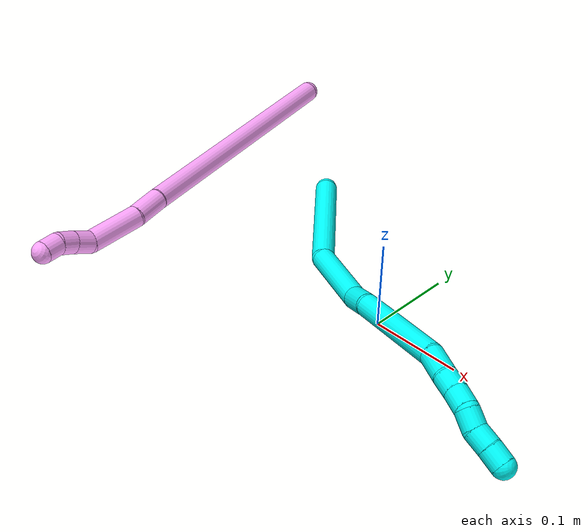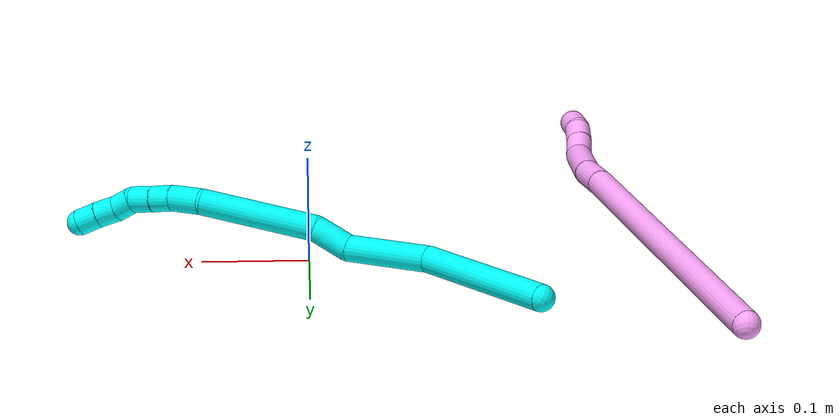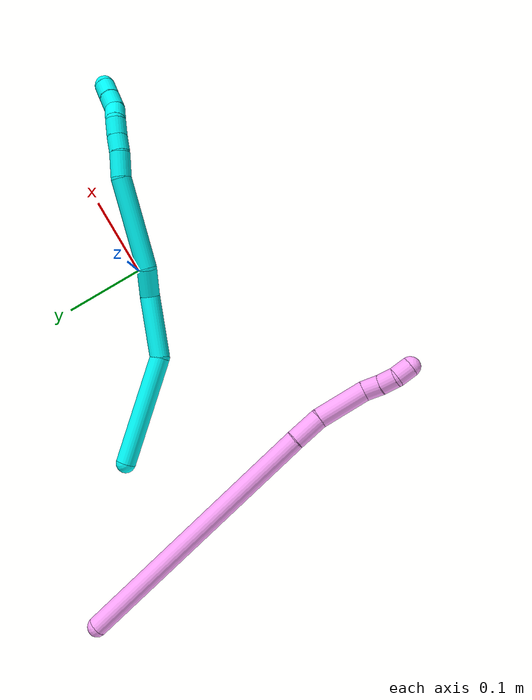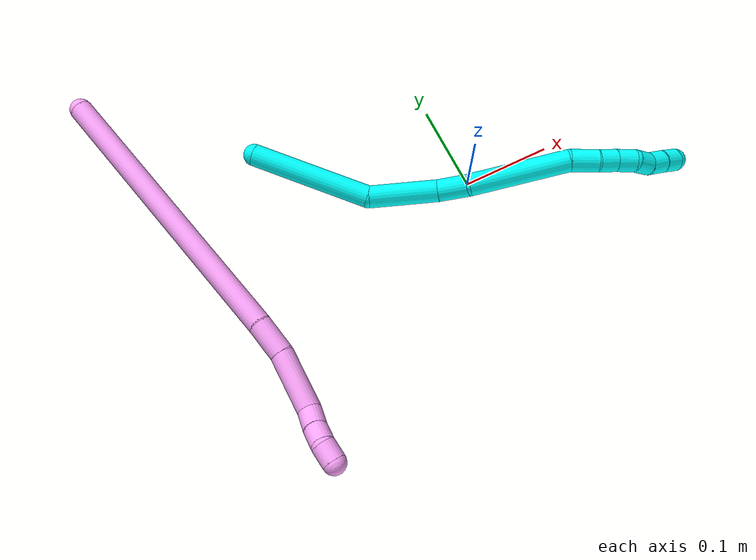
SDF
<sdf version="1.7">
 <world name="default">
  <model name="photoneo_s_sensor">
   <static>1</static>
   <pose>0 0 2 1.57079 1.57079 3.14159</pose>
   <link name="link">
    <inertial><mass>0.1</mass></inertial>
    <sensor name="sensor" type="depth">
     <update_rate>30</update_rate>
     <camera>
      <horizontal_fov>1.22</horizontal_fov>
      <image><width>1920</width><height>1200</height><format>B8G8R8</format></image>
      <clip><near>0.1</near><far>4</far></clip>
      <depth_camera><output>points</output></depth_camera>
     </camera>
     <plugin name="camera_plugin" filename="libgazebo_ros_depth_camera.so">
      <baseline>0.2</baseline>
      <alwaysOn>1</alwaysOn>
      <updateRate>0.0</updateRate>
      <cameraName>camera_ir</cameraName>
      <imageTopicName>/camera/color/image_raw</imageTopicName>
      <cameraInfoTopicName>/camera/color/camera_info</cameraInfoTopicName>
      <depthImageTopicName>/camera/depth/image_raw</depthImageTopicName>
      <depthImageCameraInfoTopicName>/camera/depth/camera_info</depthImageCameraInfoTopicName>
      <pointCloudTopicName>/camera/depth/points</pointCloudTopicName>
      <frameName>fr_optical</frameName>
      <pointCloudCutoff>0.1</pointCloudCutoff>
      <pointCloudCutoffMax>2.0</pointCloudCutoffMax>
      <distortionK1>0</distortionK1>
      <distortionK2>0</distortionK2>
      <distortionK3>0</distortionK3>
      <distortionT1>0</distortionT1>
      <distortionT2>0</distortionT2>
      <CxPrime>0</CxPrime>
      <Cx>0</Cx>
      <Cy>0</Cy>
      <focalLength>0</focalLength>
      <hackBaseline>0</hackBaseline>
     </plugin>
    </sensor>
   </link>
  </model>
  <model name="bin">
   <static>1</static>
   <link name="bottom">
    <collision name="collision-bottom">
     <pose>0 0 -0.01 0 -0 0</pose>
     <geometry><box><size>0.8 0.6 0.02</size></box></geometry>
     <surface>
      <friction><ode><mu>100</mu><mu2>100</mu2></ode></friction>
      <contact><collide_bitmask>65535</collide_bitmask></contact>
     </surface>
    </collision>
   </link>
   <link name="west_wall">
    <collision name="collision-west_wall">
     <pose>-0.41 0 0.1 0 -0 0</pose>
     <geometry><box><size>0.02 0.6 0.2</size></box></geometry>
     <surface>
      <friction><ode><mu>100</mu><mu2>100</mu2></ode></friction>
      <contact><collide_bitmask>65535</collide_bitmask></contact>
     </surface>
    </collision>
   </link>
   <link name="east_wall">
    <collision name="collision-east_wall">
     <pose>0.41 0 0.1 0 -0 0</pose>
     <geometry><box><size>0.02 0.6 0.2</size></box></geometry>
     <surface>
      <friction><ode><mu>100</mu><mu2>100</mu2></ode></friction>
      <contact><collide_bitmask>65535</collide_bitmask></contact>
     </surface>
    </collision>
   </link>
   <link name="south_wall">
    <collision name="collision-south_wall">
     <pose>0 -0.31 0.1 0 -0 0</pose>
     <geometry><box><size>0.8 0.02 0.2</size></box></geometry>
     <surface>
      <friction><ode><mu>100</mu><mu2>100</mu2></ode></friction>
      <contact><collide_bitmask>65535</collide_bitmask></contact>
     </surface>
    </collision>
   </link>
   <link name="north_wall">
    <collision name="collision-north_wall">
     <pose>0 0.31 0.1 0 -0 0</pose>
     <geometry><box><size>0.8 0.02 0.2</size></box></geometry>
     <surface>
      <friction><ode><mu>100</mu><mu2>100</mu2></ode></friction>
      <contact><collide_bitmask>65535</collide_bitmask></contact>
     </surface>
    </collision>
   </link>
  </model>
  <model name="3">
   <static>0</static>
   <link name="3">
    <collision name="collision-cylinder-e_1_1_4">
     <pose>-0.007545 -0.06056 0.033587 1.06442 -0.108523 -0.063949</pose>
     <geometry><cylinder><radius>0.0125</radius><length>0.13932</length></cylinder></geometry>
     <surface>
      <friction><ode><mu>1.16</mu><mu2>1.16</mu2><slip1>0</slip1><slip2>0</slip2></ode></friction>
      <contact><ode><kp>1e+06</kp><kd>1</kd><max_vel>0</max_vel><min_depth>0.001</min_depth></ode></contact>
     </surface>
    </collision>
    <visual name="visual-cylinder-e_1_1_4">
     <pose>-0.007545 -0.06056 0.033587 1.06442 -0.108523 -0.063949</pose>
     <geometry><cylinder><radius>0.0125</radius><length>0.13932</length></cylinder></geometry>
     <material><ambient>0.003922 1 0.996078 1</ambient></material>
    </visual>
    <collision name="collision-cylinder-e_2_4_5">
     <pose>-0.007835 -0.145785 0.096694 0.696057 0.186397 0.067795</pose>
     <geometry><cylinder><radius>0.0125</radius><length>0.078291</length></cylinder></geometry>
     <surface>
      <friction><ode><mu>1.16</mu><mu2>1.16</mu2><slip1>0</slip1><slip2>0</slip2></ode></friction>
      <contact><ode><kp>1e+06</kp><kd>1</kd><max_vel>0</max_vel><min_depth>0.001</min_depth></ode></contact>
     </surface>
    </collision>
    <visual name="visual-cylinder-e_2_4_5">
     <pose>-0.007835 -0.145785 0.096694 0.696057 0.186397 0.067795</pose>
     <geometry><cylinder><radius>0.0125</radius><length>0.078291</length></cylinder></geometry>
     <material><ambient>0.003922 1 0.996078 1</ambient></material>
    </visual>
    <collision name="collision-cylinder-e_3_5_6">
     <pose>-0.003647 -0.179019 0.141795 0.502791 -0.170746 -0.043952</pose>
     <geometry><cylinder><radius>0.0125</radius><length>0.036091</length></cylinder></geometry>
     <surface>
      <friction><ode><mu>1.16</mu><mu2>1.16</mu2><slip1>0</slip1><slip2>0</slip2></ode></friction>
      <contact><ode><kp>1e+06</kp><kd>1</kd><max_vel>0</max_vel><min_depth>0.001</min_depth></ode></contact>
     </surface>
    </collision>
    <visual name="visual-cylinder-e_3_5_6">
     <pose>-0.003647 -0.179019 0.141795 0.502791 -0.170746 -0.043952</pose>
     <geometry><cylinder><radius>0.0125</radius><length>0.036091</length></cylinder></geometry>
     <material><ambient>0.003922 1 0.996078 1</ambient></material>
    </visual>
    <collision name="collision-cylinder-e_4_6_7">
     <pose>0.001455 -0.215488 0.205441 0.52594 0.145937 0.039352</pose>
     <geometry><cylinder><radius>0.0125</radius><length>0.112344</length></cylinder></geometry>
     <surface>
      <friction><ode><mu>1.16</mu><mu2>1.16</mu2><slip1>0</slip1><slip2>0</slip2></ode></friction>
      <contact><ode><kp>1e+06</kp><kd>1</kd><max_vel>0</max_vel><min_depth>0.001</min_depth></ode></contact>
     </surface>
    </collision>
    <visual name="visual-cylinder-e_4_6_7">
     <pose>0.001455 -0.215488 0.205441 0.52594 0.145937 0.039352</pose>
     <geometry><cylinder><radius>0.0125</radius><length>0.112344</length></cylinder></geometry>
     <material><ambient>0.003922 1 0.996078 1</ambient></material>
    </visual>
    <collision name="collision-cylinder-e_5_7_8">
     <pose>0.011978 -0.254413 0.26423 0.799206 0.151926 0.064264</pose>
     <geometry><cylinder><radius>0.0125</radius><length>0.031118</length></cylinder></geometry>
     <surface>
      <friction><ode><mu>1.16</mu><mu2>1.16</mu2><slip1>0</slip1><slip2>0</slip2></ode></friction>
      <contact><ode><kp>1e+06</kp><kd>1</kd><max_vel>0</max_vel><min_depth>0.001</min_depth></ode></contact>
     </surface>
    </collision>
    <visual name="visual-cylinder-e_5_7_8">
     <pose>0.011978 -0.254413 0.26423 0.799206 0.151926 0.064264</pose>
     <geometry><cylinder><radius>0.0125</radius><length>0.031118</length></cylinder></geometry>
     <material><ambient>0.003922 1 0.996078 1</ambient></material>
    </visual>
    <collision name="collision-cylinder-e_6_8_9">
     <pose>0.017631 -0.272389 0.281638 0.805003 0.329518 0.141338</pose>
     <geometry><cylinder><radius>0.0125</radius><length>0.020384</length></cylinder></geometry>
     <surface>
      <friction><ode><mu>1.16</mu><mu2>1.16</mu2><slip1>0</slip1><slip2>0</slip2></ode></friction>
      <contact><ode><kp>1e+06</kp><kd>1</kd><max_vel>0</max_vel><min_depth>0.001</min_depth></ode></contact>
     </surface>
    </collision>
    <visual name="visual-cylinder-e_6_8_9">
     <pose>0.017631 -0.272389 0.281638 0.805003 0.329518 0.141338</pose>
     <geometry><cylinder><radius>0.0125</radius><length>0.020384</length></cylinder></geometry>
     <material><ambient>0.003922 1 0.996078 1</ambient></material>
    </visual>
    <collision name="collision-cylinder-e_7_9_10">
     <pose>0.023922 -0.287136 0.295324 0.838954 0.278203 0.124708</pose>
     <geometry><cylinder><radius>0.0125</radius><length>0.021795</length></cylinder></geometry>
     <surface>
      <friction><ode><mu>1.16</mu><mu2>1.16</mu2><slip1>0</slip1><slip2>0</slip2></ode></friction>
      <contact><ode><kp>1e+06</kp><kd>1</kd><max_vel>0</max_vel><min_depth>0.001</min_depth></ode></contact>
     </surface>
    </collision>
    <visual name="visual-cylinder-e_7_9_10">
     <pose>0.023922 -0.287136 0.295324 0.838954 0.278203 0.124708</pose>
     <geometry><cylinder><radius>0.0125</radius><length>0.021795</length></cylinder></geometry>
     <material><ambient>0.003922 1 0.996078 1</ambient></material>
    </visual>
    <collision name="collision-cylinder-e_8_10_11">
     <pose>0.032562 -0.302633 0.305763 1.15105 0.59004 0.389326</pose>
     <geometry><cylinder><radius>0.0125</radius><length>0.020301</length></cylinder></geometry>
     <surface>
      <friction><ode><mu>1.16</mu><mu2>1.16</mu2><slip1>0</slip1><slip2>0</slip2></ode></friction>
      <contact><ode><kp>1e+06</kp><kd>1</kd><max_vel>0</max_vel><min_depth>0.001</min_depth></ode></contact>
     </surface>
    </collision>
    <visual name="visual-cylinder-e_8_10_11">
     <pose>0.032562 -0.302633 0.305763 1.15105 0.59004 0.389326</pose>
     <geometry><cylinder><radius>0.0125</radius><length>0.020301</length></cylinder></geometry>
     <material><ambient>0.003922 1 0.996078 1</ambient></material>
    </visual>
    <collision name="collision-cylinder-e_9_11_12">
     <pose>0.044202 -0.316013 0.315052 0.770392 0.633769 0.264372</pose>
     <geometry><cylinder><radius>0.0125</radius><length>0.020237</length></cylinder></geometry>
     <surface>
      <friction><ode><mu>1.16</mu><mu2>1.16</mu2><slip1>0</slip1><slip2>0</slip2></ode></friction>
      <contact><ode><kp>1e+06</kp><kd>1</kd><max_vel>0</max_vel><min_depth>0.001</min_depth></ode></contact>
     </surface>
    </collision>
    <visual name="visual-cylinder-e_9_11_12">
     <pose>0.044202 -0.316013 0.315052 0.770392 0.633769 0.264372</pose>
     <geometry><cylinder><radius>0.0125</radius><length>0.020237</length></cylinder></geometry>
     <material><ambient>0.003922 1 0.996078 1</ambient></material>
    </visual>
    <collision name="collision-cylinder-e_10_12_2">
     <pose>0.056541 -0.327509 0.326105 0.841175 0.682797 0.31521</pose>
     <geometry><cylinder><radius>0.0125</radius><length>0.020119</length></cylinder></geometry>
     <surface>
      <friction><ode><mu>1.16</mu><mu2>1.16</mu2><slip1>0</slip1><slip2>0</slip2></ode></friction>
      <contact><ode><kp>1e+06</kp><kd>1</kd><max_vel>0</max_vel><min_depth>0.001</min_depth></ode></contact>
     </surface>
    </collision>
    <visual name="visual-cylinder-e_10_12_2">
     <pose>0.056541 -0.327509 0.326105 0.841175 0.682797 0.31521</pose>
     <geometry><cylinder><radius>0.0125</radius><length>0.020119</length></cylinder></geometry>
     <material><ambient>0.003922 1 0.996078 1</ambient></material>
    </visual>
    <collision name="collision-sphere-2">
     <pose>0.062888 -0.333326 0.331307 0 -0 0</pose>
     <geometry><sphere><radius>0.0125</radius></sphere></geometry>
     <surface>
      <friction><ode><mu>1.16</mu><mu2>1.16</mu2><slip1>0</slip1><slip2>0</slip2></ode></friction>
      <contact><ode><kp>1e+06</kp><kd>1</kd><max_vel>0</max_vel><min_depth>0.001</min_depth></ode></contact>
     </surface>
    </collision>
    <visual name="visual-sphere-2">
     <pose>0.062888 -0.333326 0.331307 0 -0 0</pose>
     <geometry><sphere><radius>0.0125</radius></sphere></geometry>
     <material><ambient>0.003922 1 0.996078 1</ambient></material>
    </visual>
    <collision name="collision-sphere-12">
     <pose>0.050194 -0.321692 0.320903 0 -0 0</pose>
     <geometry><sphere><radius>0.0125</radius></sphere></geometry>
     <surface>
      <friction><ode><mu>1.16</mu><mu2>1.16</mu2><slip1>0</slip1><slip2>0</slip2></ode></friction>
      <contact><ode><kp>1e+06</kp><kd>1</kd><max_vel>0</max_vel><min_depth>0.001</min_depth></ode></contact>
     </surface>
    </collision>
    <visual name="visual-sphere-12">
     <pose>0.050194 -0.321692 0.320903 0 -0 0</pose>
     <geometry><sphere><radius>0.0125</radius></sphere></geometry>
     <material><ambient>0.003922 1 0.996078 1</ambient></material>
    </visual>
    <collision name="collision-sphere-11">
     <pose>0.03821 -0.310335 0.3092 0 -0 0</pose>
     <geometry><sphere><radius>0.0125</radius></sphere></geometry>
     <surface>
      <friction><ode><mu>1.16</mu><mu2>1.16</mu2><slip1>0</slip1><slip2>0</slip2></ode></friction>
      <contact><ode><kp>1e+06</kp><kd>1</kd><max_vel>0</max_vel><min_depth>0.001</min_depth></ode></contact>
     </surface>
    </collision>
    <visual name="visual-sphere-11">
     <pose>0.03821 -0.310335 0.3092 0 -0 0</pose>
     <geometry><sphere><radius>0.0125</radius></sphere></geometry>
     <material><ambient>0.003922 1 0.996078 1</ambient></material>
    </visual>
    <collision name="collision-sphere-10">
     <pose>0.026915 -0.294931 0.302326 0 -0 0</pose>
     <geometry><sphere><radius>0.0125</radius></sphere></geometry>
     <surface>
      <friction><ode><mu>1.16</mu><mu2>1.16</mu2><slip1>0</slip1><slip2>0</slip2></ode></friction>
      <contact><ode><kp>1e+06</kp><kd>1</kd><max_vel>0</max_vel><min_depth>0.001</min_depth></ode></contact>
     </surface>
    </collision>
    <visual name="visual-sphere-10">
     <pose>0.026915 -0.294931 0.302326 0 -0 0</pose>
     <geometry><sphere><radius>0.0125</radius></sphere></geometry>
     <material><ambient>0.003922 1 0.996078 1</ambient></material>
    </visual>
    <collision name="collision-sphere-9">
     <pose>0.020929 -0.27934 0.288322 0 -0 0</pose>
     <geometry><sphere><radius>0.0125</radius></sphere></geometry>
     <surface>
      <friction><ode><mu>1.16</mu><mu2>1.16</mu2><slip1>0</slip1><slip2>0</slip2></ode></friction>
      <contact><ode><kp>1e+06</kp><kd>1</kd><max_vel>0</max_vel><min_depth>0.001</min_depth></ode></contact>
     </surface>
    </collision>
    <visual name="visual-sphere-9">
     <pose>0.020929 -0.27934 0.288322 0 -0 0</pose>
     <geometry><sphere><radius>0.0125</radius></sphere></geometry>
     <material><ambient>0.003922 1 0.996078 1</ambient></material>
    </visual>
    <collision name="collision-sphere-4">
     <pose>-0.01509 -0.12112 0.067175 0 -0 0</pose>
     <geometry><sphere><radius>0.0125</radius></sphere></geometry>
     <surface>
      <friction><ode><mu>1.16</mu><mu2>1.16</mu2><slip1>0</slip1><slip2>0</slip2></ode></friction>
      <contact><ode><kp>1e+06</kp><kd>1</kd><max_vel>0</max_vel><min_depth>0.001</min_depth></ode></contact>
     </surface>
    </collision>
    <visual name="visual-sphere-4">
     <pose>-0.01509 -0.12112 0.067175 0 -0 0</pose>
     <geometry><sphere><radius>0.0125</radius></sphere></geometry>
     <material><ambient>0.003922 1 0.996078 1</ambient></material>
    </visual>
    <collision name="collision-sphere-1">
     <geometry><sphere><radius>0.0125</radius></sphere></geometry>
     <surface>
      <friction><ode><mu>1.16</mu><mu2>1.16</mu2><slip1>0</slip1><slip2>0</slip2></ode></friction>
      <contact><ode><kp>1e+06</kp><kd>1</kd><max_vel>0</max_vel><min_depth>0.001</min_depth></ode></contact>
     </surface>
    </collision>
    <visual name="visual-sphere-1">
     <geometry><sphere><radius>0.0125</radius></sphere></geometry>
     <material><ambient>0.003922 1 0.996078 1</ambient></material>
    </visual>
    <collision name="collision-sphere-8">
     <pose>0.014333 -0.265437 0.274954 0 -0 0</pose>
     <geometry><sphere><radius>0.0125</radius></sphere></geometry>
     <surface>
      <friction><ode><mu>1.16</mu><mu2>1.16</mu2><slip1>0</slip1><slip2>0</slip2></ode></friction>
      <contact><ode><kp>1e+06</kp><kd>1</kd><max_vel>0</max_vel><min_depth>0.001</min_depth></ode></contact>
     </surface>
    </collision>
    <visual name="visual-sphere-8">
     <pose>0.014333 -0.265437 0.274954 0 -0 0</pose>
     <geometry><sphere><radius>0.0125</radius></sphere></geometry>
     <material><ambient>0.003922 1 0.996078 1</ambient></material>
    </visual>
    <collision name="collision-sphere-5">
     <pose>-0.000581 -0.17045 0.126213 0 -0 0</pose>
     <geometry><sphere><radius>0.0125</radius></sphere></geometry>
     <surface>
      <friction><ode><mu>1.16</mu><mu2>1.16</mu2><slip1>0</slip1><slip2>0</slip2></ode></friction>
      <contact><ode><kp>1e+06</kp><kd>1</kd><max_vel>0</max_vel><min_depth>0.001</min_depth></ode></contact>
     </surface>
    </collision>
    <visual name="visual-sphere-5">
     <pose>-0.000581 -0.17045 0.126213 0 -0 0</pose>
     <geometry><sphere><radius>0.0125</radius></sphere></geometry>
     <material><ambient>0.003922 1 0.996078 1</ambient></material>
    </visual>
    <collision name="collision-sphere-6">
     <pose>-0.006713 -0.187588 0.157377 0 -0 0</pose>
     <geometry><sphere><radius>0.0125</radius></sphere></geometry>
     <surface>
      <friction><ode><mu>1.16</mu><mu2>1.16</mu2><slip1>0</slip1><slip2>0</slip2></ode></friction>
      <contact><ode><kp>1e+06</kp><kd>1</kd><max_vel>0</max_vel><min_depth>0.001</min_depth></ode></contact>
     </surface>
    </collision>
    <visual name="visual-sphere-6">
     <pose>-0.006713 -0.187588 0.157377 0 -0 0</pose>
     <geometry><sphere><radius>0.0125</radius></sphere></geometry>
     <material><ambient>0.003922 1 0.996078 1</ambient></material>
    </visual>
    <collision name="collision-sphere-7">
     <pose>0.009624 -0.243389 0.253506 0 -0 0</pose>
     <geometry><sphere><radius>0.0125</radius></sphere></geometry>
     <surface>
      <friction><ode><mu>1.16</mu><mu2>1.16</mu2><slip1>0</slip1><slip2>0</slip2></ode></friction>
      <contact><ode><kp>1e+06</kp><kd>1</kd><max_vel>0</max_vel><min_depth>0.001</min_depth></ode></contact>
     </surface>
    </collision>
    <visual name="visual-sphere-7">
     <pose>0.009624 -0.243389 0.253506 0 -0 0</pose>
     <geometry><sphere><radius>0.0125</radius></sphere></geometry>
     <material><ambient>0.003922 1 0.996078 1</ambient></material>
    </visual>
    <inertial>
     <pose>0.004628 -0.178752 0.159982 0 -0 0</pose>
     <mass>0.5</mass>
     <inertia>
      <ixx>0.000407</ixx>
      <ixy>0</ixy>
      <ixz>0</ixz>
      <iyy>0.000234</iyy>
      <iyz>0</iyz>
      <izz>0.000321</izz>
     </inertia>
    </inertial>
   </link>
   <pose>-0.201774 0.135512 0.011957 0.632336 0.836023 0.894199</pose>
  </model>
  <model name="4">
   <static>0</static>
   <link name="4">
    <collision name="collision-cylinder-e_1_1_4">
     <pose>-0.008444 -0.111722 -0.123753 2.40724 -0.050606 -0.131414</pose>
     <geometry><cylinder><radius>0.0125</radius><length>0.333873</length></cylinder></geometry>
     <surface>
      <friction><ode><mu>1.16</mu><mu2>1.16</mu2><slip1>0</slip1><slip2>0</slip2></ode></friction>
      <contact><ode><kp>1e+06</kp><kd>1</kd><max_vel>0</max_vel><min_depth>0.001</min_depth></ode></contact>
     </surface>
    </collision>
    <visual name="visual-cylinder-e_1_1_4">
     <pose>-0.008444 -0.111722 -0.123753 2.40724 -0.050606 -0.131414</pose>
     <geometry><cylinder><radius>0.0125</radius><length>0.333873</length></cylinder></geometry>
     <material><ambient>1 0.65098 0.996078 1</ambient></material>
    </visual>
    <collision name="collision-cylinder-e_2_4_5">
     <pose>-0.016804 -0.237424 -0.260658 2.32571 0.004414 0.010213</pose>
     <geometry><cylinder><radius>0.0125</radius><length>0.03839</length></cylinder></geometry>
     <surface>
      <friction><ode><mu>1.16</mu><mu2>1.16</mu2><slip1>0</slip1><slip2>0</slip2></ode></friction>
      <contact><ode><kp>1e+06</kp><kd>1</kd><max_vel>0</max_vel><min_depth>0.001</min_depth></ode></contact>
     </surface>
    </collision>
    <visual name="visual-cylinder-e_2_4_5">
     <pose>-0.016804 -0.237424 -0.260658 2.32571 0.004414 0.010213</pose>
     <geometry><cylinder><radius>0.0125</radius><length>0.03839</length></cylinder></geometry>
     <material><ambient>1 0.65098 0.996078 1</ambient></material>
    </visual>
    <collision name="collision-cylinder-e_3_5_6">
     <pose>-0.010778 -0.27349 -0.296417 2.36785 0.185826 0.449703</pose>
     <geometry><cylinder><radius>0.0125</radius><length>0.064314</length></cylinder></geometry>
     <surface>
      <friction><ode><mu>1.16</mu><mu2>1.16</mu2><slip1>0</slip1><slip2>0</slip2></ode></friction>
      <contact><ode><kp>1e+06</kp><kd>1</kd><max_vel>0</max_vel><min_depth>0.001</min_depth></ode></contact>
     </surface>
    </collision>
    <visual name="visual-cylinder-e_3_5_6">
     <pose>-0.010778 -0.27349 -0.296417 2.36785 0.185826 0.449703</pose>
     <geometry><cylinder><radius>0.0125</radius><length>0.064314</length></cylinder></geometry>
     <material><ambient>1 0.65098 0.996078 1</ambient></material>
    </visual>
    <collision name="collision-cylinder-e_4_6_7">
     <pose>-0.002579 -0.298943 -0.329497 2.83048 0.202361 1.14908</pose>
     <geometry><cylinder><radius>0.0125</radius><length>0.022464</length></cylinder></geometry>
     <surface>
      <friction><ode><mu>1.16</mu><mu2>1.16</mu2><slip1>0</slip1><slip2>0</slip2></ode></friction>
      <contact><ode><kp>1e+06</kp><kd>1</kd><max_vel>0</max_vel><min_depth>0.001</min_depth></ode></contact>
     </surface>
    </collision>
    <visual name="visual-cylinder-e_4_6_7">
     <pose>-0.002579 -0.298943 -0.329497 2.83048 0.202361 1.14908</pose>
     <geometry><cylinder><radius>0.0125</radius><length>0.022464</length></cylinder></geometry>
     <material><ambient>1 0.65098 0.996078 1</ambient></material>
    </visual>
    <collision name="collision-cylinder-e_5_7_8">
     <pose>0.000739 -0.305813 -0.349324 2.78323 0.105833 0.568995</pose>
     <geometry><cylinder><radius>0.0125</radius><length>0.020085</length></cylinder></geometry>
     <surface>
      <friction><ode><mu>1.16</mu><mu2>1.16</mu2><slip1>0</slip1><slip2>0</slip2></ode></friction>
      <contact><ode><kp>1e+06</kp><kd>1</kd><max_vel>0</max_vel><min_depth>0.001</min_depth></ode></contact>
     </surface>
    </collision>
    <visual name="visual-cylinder-e_5_7_8">
     <pose>0.000739 -0.305813 -0.349324 2.78323 0.105833 0.568995</pose>
     <geometry><cylinder><radius>0.0125</radius><length>0.020085</length></cylinder></geometry>
     <material><ambient>1 0.65098 0.996078 1</ambient></material>
    </visual>
    <collision name="collision-cylinder-e_6_8_2">
     <pose>0.002551 -0.316272 -0.36642 2.40978 0.072063 0.187602</pose>
     <geometry><cylinder><radius>0.0125</radius><length>0.020874</length></cylinder></geometry>
     <surface>
      <friction><ode><mu>1.16</mu><mu2>1.16</mu2><slip1>0</slip1><slip2>0</slip2></ode></friction>
      <contact><ode><kp>1e+06</kp><kd>1</kd><max_vel>0</max_vel><min_depth>0.001</min_depth></ode></contact>
     </surface>
    </collision>
    <visual name="visual-cylinder-e_6_8_2">
     <pose>0.002551 -0.316272 -0.36642 2.40978 0.072063 0.187602</pose>
     <geometry><cylinder><radius>0.0125</radius><length>0.020874</length></cylinder></geometry>
     <material><ambient>1 0.65098 0.996078 1</ambient></material>
    </visual>
    <collision name="collision-sphere-2">
     <pose>0.003303 -0.323228 -0.374165 0 -0 0</pose>
     <geometry><sphere><radius>0.0125</radius></sphere></geometry>
     <surface>
      <friction><ode><mu>1.16</mu><mu2>1.16</mu2><slip1>0</slip1><slip2>0</slip2></ode></friction>
      <contact><ode><kp>1e+06</kp><kd>1</kd><max_vel>0</max_vel><min_depth>0.001</min_depth></ode></contact>
     </surface>
    </collision>
    <visual name="visual-sphere-2">
     <pose>0.003303 -0.323228 -0.374165 0 -0 0</pose>
     <geometry><sphere><radius>0.0125</radius></sphere></geometry>
     <material><ambient>1 0.65098 0.996078 1</ambient></material>
    </visual>
    <collision name="collision-sphere-4">
     <pose>-0.016889 -0.223444 -0.247506 0 -0 0</pose>
     <geometry><sphere><radius>0.0125</radius></sphere></geometry>
     <surface>
      <friction><ode><mu>1.16</mu><mu2>1.16</mu2><slip1>0</slip1><slip2>0</slip2></ode></friction>
      <contact><ode><kp>1e+06</kp><kd>1</kd><max_vel>0</max_vel><min_depth>0.001</min_depth></ode></contact>
     </surface>
    </collision>
    <visual name="visual-sphere-4">
     <pose>-0.016889 -0.223444 -0.247506 0 -0 0</pose>
     <geometry><sphere><radius>0.0125</radius></sphere></geometry>
     <material><ambient>1 0.65098 0.996078 1</ambient></material>
    </visual>
    <collision name="collision-sphere-1">
     <geometry><sphere><radius>0.0125</radius></sphere></geometry>
     <surface>
      <friction><ode><mu>1.16</mu><mu2>1.16</mu2><slip1>0</slip1><slip2>0</slip2></ode></friction>
      <contact><ode><kp>1e+06</kp><kd>1</kd><max_vel>0</max_vel><min_depth>0.001</min_depth></ode></contact>
     </surface>
    </collision>
    <visual name="visual-sphere-1">
     <geometry><sphere><radius>0.0125</radius></sphere></geometry>
     <material><ambient>1 0.65098 0.996078 1</ambient></material>
    </visual>
    <collision name="collision-sphere-8">
     <pose>0.0018 -0.309316 -0.358676 0 -0 0</pose>
     <geometry><sphere><radius>0.0125</radius></sphere></geometry>
     <surface>
      <friction><ode><mu>1.16</mu><mu2>1.16</mu2><slip1>0</slip1><slip2>0</slip2></ode></friction>
      <contact><ode><kp>1e+06</kp><kd>1</kd><max_vel>0</max_vel><min_depth>0.001</min_depth></ode></contact>
     </surface>
    </collision>
    <visual name="visual-sphere-8">
     <pose>0.0018 -0.309316 -0.358676 0 -0 0</pose>
     <geometry><sphere><radius>0.0125</radius></sphere></geometry>
     <material><ambient>1 0.65098 0.996078 1</ambient></material>
    </visual>
    <collision name="collision-sphere-5">
     <pose>-0.016719 -0.251405 -0.273811 0 -0 0</pose>
     <geometry><sphere><radius>0.0125</radius></sphere></geometry>
     <surface>
      <friction><ode><mu>1.16</mu><mu2>1.16</mu2><slip1>0</slip1><slip2>0</slip2></ode></friction>
      <contact><ode><kp>1e+06</kp><kd>1</kd><max_vel>0</max_vel><min_depth>0.001</min_depth></ode></contact>
     </surface>
    </collision>
    <visual name="visual-sphere-5">
     <pose>-0.016719 -0.251405 -0.273811 0 -0 0</pose>
     <geometry><sphere><radius>0.0125</radius></sphere></geometry>
     <material><ambient>1 0.65098 0.996078 1</ambient></material>
    </visual>
    <collision name="collision-sphere-6">
     <pose>-0.004837 -0.295575 -0.319023 0 -0 0</pose>
     <geometry><sphere><radius>0.0125</radius></sphere></geometry>
     <surface>
      <friction><ode><mu>1.16</mu><mu2>1.16</mu2><slip1>0</slip1><slip2>0</slip2></ode></friction>
      <contact><ode><kp>1e+06</kp><kd>1</kd><max_vel>0</max_vel><min_depth>0.001</min_depth></ode></contact>
     </surface>
    </collision>
    <visual name="visual-sphere-6">
     <pose>-0.004837 -0.295575 -0.319023 0 -0 0</pose>
     <geometry><sphere><radius>0.0125</radius></sphere></geometry>
     <material><ambient>1 0.65098 0.996078 1</ambient></material>
    </visual>
    <collision name="collision-sphere-7">
     <pose>-0.000322 -0.302311 -0.339972 0 -0 0</pose>
     <geometry><sphere><radius>0.0125</radius></sphere></geometry>
     <surface>
      <friction><ode><mu>1.16</mu><mu2>1.16</mu2><slip1>0</slip1><slip2>0</slip2></ode></friction>
      <contact><ode><kp>1e+06</kp><kd>1</kd><max_vel>0</max_vel><min_depth>0.001</min_depth></ode></contact>
     </surface>
    </collision>
    <visual name="visual-sphere-7">
     <pose>-0.000322 -0.302311 -0.339972 0 -0 0</pose>
     <geometry><sphere><radius>0.0125</radius></sphere></geometry>
     <material><ambient>1 0.65098 0.996078 1</ambient></material>
    </visual>
    <inertial>
     <pose>-0.008295 -0.166929 -0.184909 0 -0 0</pose>
     <mass>0.5</mass>
     <inertia>
      <ixx>0.002721</ixx>
      <ixy>0</ixy>
      <ixz>0</ixz>
      <iyy>-0.002719</iyy>
      <iyz>0</iyz>
      <izz>0.002231</izz>
     </inertia>
    </inertial>
   </link>
   <pose>-0.355529 0.262511 0.035339 2.34529 0.228637 -2.95046</pose>
  </model>
 </world>
</sdf>
